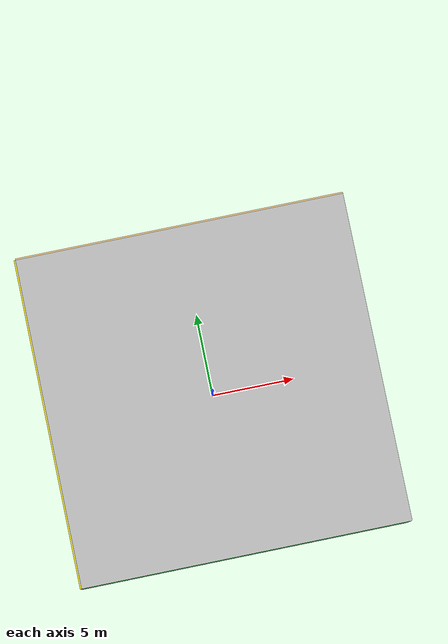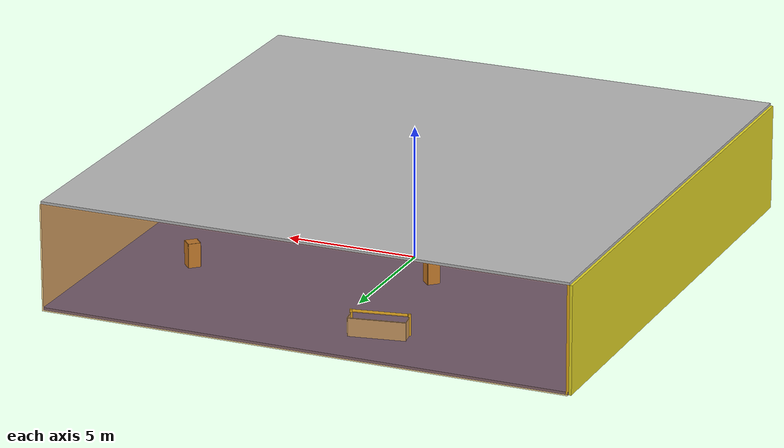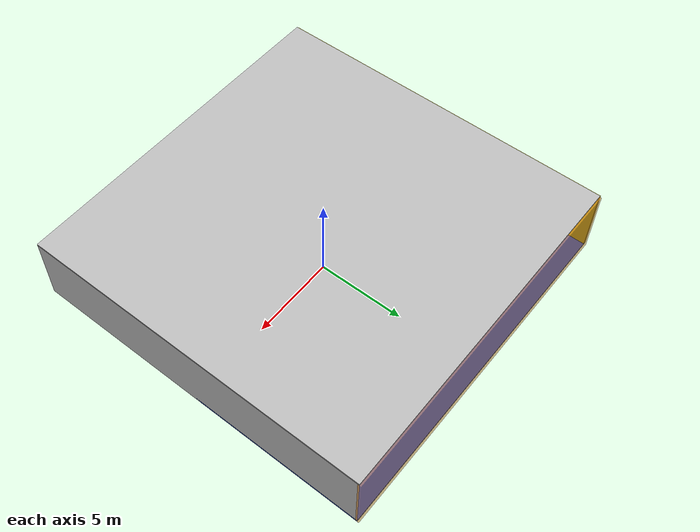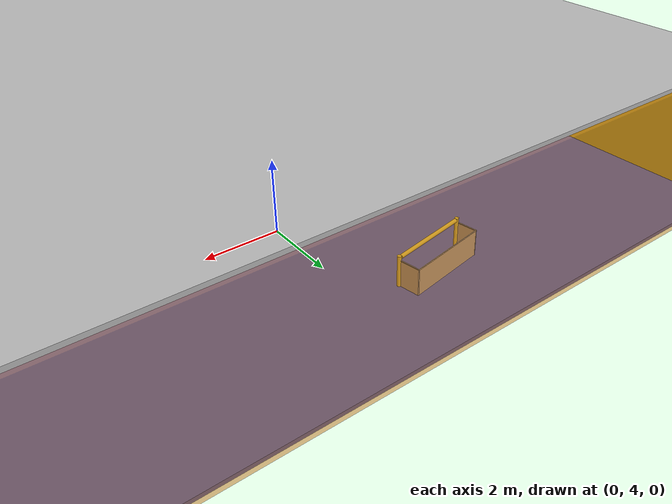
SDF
<sdf version="1.4">
 <world name="default">
  <physics type="ode">
   <max_step_size>0.001</max_step_size>
   <real_time_factor>1</real_time_factor>
   <real_time_update_rate>1000</real_time_update_rate>
   <gravity>0 0 -9.8</gravity>
  </physics>
  <scene><ambient>0.4 0.4 0.4 1</ambient><background>0.7 0.7 0.7 1</background><shadows>1</shadows></scene>
  <model name="Surrounding">
   <static>1</static>
   <link name="Ceiling">
    <collision name="Ceiling_Collision"><geometry><box><size>20 20 0.1</size></box></geometry></collision>
    <visual name="Ceiling_Visual">
     <geometry><box><size>20 20 0.1</size></box></geometry>
     <material>
      <script><uri>file://media/materials/scripts/gazebo.material</uri><name>Gazebo/PioneerBody</name></script>
     </material>
    </visual>
    <pose>0 0 4.05 0 0 0</pose>
   </link>
   <link name="Wall_South">
    <collision name="Wall_South_Collision">
     <geometry><box><size>20 0 4</size></box></geometry>
     <pose>0 0 2 0 -0 0</pose>
    </collision>
    <visual name="Wall_South_Visual">
     <pose>0 0 2 0 -0 0</pose>
     <geometry><box><size>20 0 4</size></box></geometry>
     <material>
      <script><uri>file://media/materials/scripts/gazebo.material</uri><name>Gazebo/GreenGlow</name></script>
     </material>
    </visual>
    <velocity_decay><linear>0</linear><angular>0</angular></velocity_decay>
    <pose>0 -10 0 0 -0 0</pose>
   </link>
   <link name="Wall_East">
    <collision name="Wall_21_Collision">
     <geometry><box><size>20 0 4</size></box></geometry>
     <pose>0 0 2 0 -0 0</pose>
    </collision>
    <visual name="Wall_21_Visual">
     <pose>0 0 2 0 -0 0</pose>
     <geometry><box><size>20 0 4</size></box></geometry>
     <material>
      <script><uri>file://media/materials/scripts/gazebo.material</uri><name>Gazebo/CloudySky</name></script>
     </material>
    </visual>
    <velocity_decay><linear>0</linear><angular>0</angular></velocity_decay>
    <pose>10 0 0 0 -0 1.5708</pose>
   </link>
   <link name="Wall_North">
    <collision name="Wall_22_Collision">
     <geometry><box><size>20 0.2 4</size></box></geometry>
     <pose>0 0 2 0 -0 0</pose>
    </collision>
    <visual name="Wall_22_Visual">
     <pose>0 0 2 0 -0 0</pose>
     <geometry><box><size>20 0.2 4</size></box></geometry>
     <material>
      <script>
       <uri>file://media/materials/scripts/gazebo.material</uri>
       <name>Gazebo/OrangeTransparent</name>
      </script>
     </material>
    </visual>
    <velocity_decay><linear>0</linear><angular>0</angular></velocity_decay>
    <pose>0 10 0 0 -0 0</pose>
   </link>
   <link name="Wall_West">
    <collision name="Wall_23_Collision">
     <geometry><box><size>20 0.2 4</size></box></geometry>
     <pose>0 0 2 0 -0 0</pose>
    </collision>
    <visual name="Wall_23_Visual">
     <pose>0 0 2 0 -0 0</pose>
     <geometry><box><size>20 0.2 4</size></box></geometry>
     <material>
      <script><uri>file://media/materials/scripts/gazebo.material</uri><name>Gazebo/Yellow</name></script>
     </material>
    </visual>
    <velocity_decay><linear>0</linear><angular>0</angular></velocity_decay>
    <pose>-10 0 0 0 0 -1.5708</pose>
   </link>
   <link name="Ground_link">
    <collision name="collision">
     <pose>0 0 .05 0 -0 0</pose>
     <geometry><box><size>20 20 0.1</size></box></geometry>
    </collision>
    <visual name="visual">
     <pose>0 0 .05 0 -0 0</pose>
     <geometry><box><size>20 20 0.1</size></box></geometry>
     <material>
      <script><uri>file://media/materials/scripts/gazebo.material</uri><name>Gazebo/BlueLaser</name></script>
     </material>
    </visual>
   </link>
   <static>1</static>
  </model>
  <spherical_coordinates>
   <surface_model>EARTH_WGS84</surface_model>
   <latitude_deg>0</latitude_deg>
   <longitude_deg>0</longitude_deg>
   <elevation>0</elevation>
   <heading_deg>0</heading_deg>
  </spherical_coordinates>
  <light name="lightball_0" type="diffuse">
   <diffuse>0.8 0.8 0.8 1</diffuse>
   <specular>0.2 0.2 0.2 1</specular>
   <attenuation>
    <range>100</range>
    <constant>0.7</constant>
    <linear>0.01</linear>
    <quadratic>0.001</quadratic>
   </attenuation>
   <direction>-0.5 0.1 -0.9</direction>
   <pose>-4.95296570286 9.57435676688 2.49169821818 0 0 0</pose>
  </light>
  <light name="lightball_1" type="diffuse">
   <diffuse>0.8 0.8 0.8 1</diffuse>
   <specular>0.2 0.2 0.2 1</specular>
   <attenuation>
    <range>100</range>
    <constant>0.7</constant>
    <linear>0.01</linear>
    <quadratic>0.001</quadratic>
   </attenuation>
   <direction>-0.5 0.1 -0.9</direction>
   <pose>4.79386092698 5.48393634509 0.565167530258 0 0 0</pose>
  </light>
  <light name="lightball_2" type="diffuse">
   <diffuse>0.8 0.8 0.8 1</diffuse>
   <specular>0.2 0.2 0.2 1</specular>
   <attenuation>
    <range>100</range>
    <constant>0.7</constant>
    <linear>0.01</linear>
    <quadratic>0.001</quadratic>
   </attenuation>
   <direction>-0.5 0.1 -0.9</direction>
   <pose>-7.77440922142 -6.7450352231 3.69958724555 0 0 0</pose>
  </light>
  <light name="lightball_3" type="diffuse">
   <diffuse>0.8 0.8 0.8 1</diffuse>
   <specular>0.2 0.2 0.2 1</specular>
   <attenuation>
    <range>100</range>
    <constant>0.7</constant>
    <linear>0.01</linear>
    <quadratic>0.001</quadratic>
   </attenuation>
   <direction>-0.5 0.1 -0.9</direction>
   <pose>-4.49429505642 4.44259886009 0.800879289649 0 0 0</pose>
  </light>
  <include>
   <uri>model://textured_shapes</uri>
   <pose>-7.35731504574 -7.13306510632 0 0 0 0.736095239384</pose>
  </include>
  <include><uri>model://cabinet</uri><pose>-1.63623708334 2.27721232288 0 0 0 2.31122457082</pose></include>
  <include>
   <uri>model://robocup_3Dsim_goal</uri>
   <pose>-1.92437109874 7.52315619995 0 0 0 1.74410688572</pose>
  </include>
  <include><uri>model://cabinet</uri><pose>6.94062736431 4.14427716205 0 0 0 2.31243428032</pose></include>
 </world>
</sdf>

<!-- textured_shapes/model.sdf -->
<sdf version="1.6">
  <model name="textured_shapes">
    <pose>0 0 0.5 0 0 0</pose>
    <link name="box">
      <pose>0 -1.5 0 0 0 0</pose>
      <collision name="collision">
        <geometry>
          <box>
            <size>1 1 1</size>
          </box>
        </geometry>
      </collision>
      <visual name="visual">
        <geometry>
          <box>
            <size>1 1 1</size>
          </box>
        </geometry>
        <material>
          <script>
            <uri>model://../model_source/models/textured_shapes/materials/scripts</uri>
            <uri>model://../model_source/models/textured_shapes/materials/textures</uri>
            <name>TexturedShape/Squares</name>
          </script>
        </material>
      </visual>
    </link>
    <link name="sphere">
      <collision name="collision">
        <geometry>
          <sphere>
            <radius>0.5</radius>
          </sphere>
        </geometry>
      </collision>
      <visual name="visual">
        <geometry>
          <sphere>
            <radius>0.5</radius>
          </sphere>
        </geometry>
        <material>
          <script>
            <uri>model://../model_source/models/textured_shapes/materials/scripts</uri>
            <uri>model://../model_source/models/textured_shapes/materials/textures</uri>
            <name>TexturedShape/Squares</name>
          </script>
        </material>
      </visual>
    </link>
    <link name="cylinder">
      <pose>0 1.5 0 0 0 0</pose>
      <collision name="collision">
        <geometry>
          <cylinder>
            <radius>0.5</radius>
            <length>1</length>
          </cylinder>
        </geometry>
      </collision>
      <visual name="visual">
        <geometry>
          <cylinder>
            <radius>0.5</radius>
            <length>1</length>
          </cylinder>
        </geometry>
        <material>
          <script>
            <uri>model://../model_source/models/textured_shapes/materials/scripts</uri>
            <uri>model://../model_source/models/textured_shapes/materials/textures</uri>
            <name>TexturedShape/Squares</name>
          </script>
        </material>
      </visual>
    </link>
  </model>
</sdf>

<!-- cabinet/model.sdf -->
<sdf version="1.5">
  <model name="cabinet">
    <static>true</static>
    <link name="cabinet_bottom_plate">
      <inertial>
        <pose>0 0 -1 0 0 0</pose>
        <inertia>
          <ixx>2.050000</ixx>
          <ixy>0</ixy>
          <ixz>0</ixz>
          <iyy>2.050000</iyy>
          <iyz>0</iyz>
          <izz>2.050000</izz>
        </inertia>
        <mass>25.000000</mass>
      </inertial>
      <collision name="cabinet_bottom_plate_geom">
        <pose>0 0 0.010000 0 0 0</pose>
        <geometry>
          <box>
            <size>0.450000 0.450000 0.020000</size>
          </box>
        </geometry>
      </collision>
      <visual name="cabinet_bottom_plate_geom_visual">
        <pose>0 0 0.010000 0 0 0</pose>
        <geometry>
          <box>
            <size>0.450000 0.450000 0.020000</size>
          </box>
        </geometry>
        <material>
          <script>
            <uri>model://media/materials/scripts/gazebo.material</uri>
            <name>Gazebo/Wood</name>
          </script>
        </material>
      </visual>
      <collision name="cabinet_bottom_plate_geom_cabinet_back_plate">
        <pose>0.235000 0 0.510000 0 0 0</pose>
        <geometry>
          <box>
            <size>0.020000 0.450000 1.020000</size>
          </box>
        </geometry>
      </collision>
      <visual name="cabinet_bottom_plate_geom_cabinet_back_plate_visual">
        <pose>0.235000 0 0.510000 0 0 0</pose>
        <geometry>
          <box>
            <size>0.020000 0.450000 1.020000</size>
          </box>
        </geometry>
        <material>
          <script>
            <uri>model://media/materials/scripts/gazebo.material</uri>
            <name>Gazebo/Wood</name>
          </script>
        </material>
      </visual>
      <collision name="cabinet_bottom_plate_geom_cabinet_left_plate">
        <pose>0 0.235000 0.510000 0 0 0</pose>
        <geometry>
          <box>
            <size>0.450000 0.020000 1.020000</size>
          </box>
        </geometry>
      </collision>
      <visual name="cabinet_bottom_plate_geom_cabinet_left_plate_visual">
        <pose>0 0.235000 0.510000 0 0 0</pose>
        <geometry>
          <box>
            <size>0.450000 0.020000 1.020000</size>
          </box>
        </geometry>
        <material>
          <script>
            <uri>model://media/materials/scripts/gazebo.material</uri>
            <name>Gazebo/Wood</name>
          </script>
        </material>
      </visual>
      <collision name="cabinet_bottom_plate_geom_cabinet_middle_plate">
        <pose>0 0 0.510000 0 0 0</pose>
        <geometry>
          <box>
            <size>0.450000 0.450000 0.020000</size>
          </box>
        </geometry>
      </collision>
      <visual name="cabinet_bottom_plate_geom_cabinet_middle_plate_visual">
        <pose>0 0 0.510000 0 0 0</pose>
        <geometry>
          <box>
            <size>0.450000 0.450000 0.020000</size>
          </box>
        </geometry>
        <material>
          <script>
            <uri>model://media/materials/scripts/gazebo.material</uri>
            <name>Gazebo/Wood</name>
          </script>
        </material>
      </visual>
      <collision name="cabinet_bottom_plate_geom_cabinet_right_plate">
        <pose>0 -0.235000 0.510000 0 0 0</pose>
        <geometry>
          <box>
            <size>0.450000 0.020000 1.020000</size>
          </box>
        </geometry>
      </collision>
      <visual name="cabinet_bottom_plate_geom_cabinet_right_plate_visual">
        <pose>0 -0.235000 0.510000 0 0 0</pose>
        <geometry>
          <box>
            <size>0.450000 0.020000 1.020000</size>
          </box>
        </geometry>
        <material>
          <script>
            <uri>model://media/materials/scripts/gazebo.material</uri>
            <name>Gazebo/Wood</name>
          </script>
        </material>
      </visual>
      <collision name="cabinet_bottom_plate_geom_cabinet_top_plate">
        <pose>0 0 1.010000 0 0 0</pose>
        <geometry>
          <box>
            <size>0.450000 0.450000 0.020000</size>
          </box>
        </geometry>
      </collision>
      <visual name="cabinet_bottom_plate_geom_cabinet_top_plate_visual">
        <pose>0 0 1.010000 0 0 0</pose>
        <geometry>
          <box>
            <size>0.450000 0.450000 0.020000</size>
          </box>
        </geometry>
        <material>
          <script>
            <uri>model://media/materials/scripts/gazebo.material</uri>
            <name>Gazebo/Wood</name>
          </script>
        </material>
      </visual>
    </link>
  </model>
</sdf>

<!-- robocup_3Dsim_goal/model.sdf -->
<sdf version="1.5">
  <model name="robocup_3d_goal">
    <static>true</static>
    <link name="left_post">
      <pose>0 1.05 0.45 0 0 0</pose>
      <collision name="collision">
        <geometry>
          <cylinder>
            <radius>0.05</radius>
            <length>0.9</length>
          </cylinder>
        </geometry>
      </collision>
      <visual name="visual">
        <geometry>
          <cylinder>
            <radius>0.05</radius>
            <length>0.9</length>
          </cylinder>
        </geometry>
        <material>
          <script>
            <uri>file://media/materials/scripts/gazebo.material</uri>
            <name>Gazebo/ZincYellow</name>
          </script>
        </material>
      </visual>
    </link>
    <link name="left_support_horiz_lower">
      <pose>0.30 1.05 0.01 0 0 0</pose>
      <collision name="collision">
        <geometry>
          <box>
            <size>0.50 0.02 0.02</size>
          </box>
        </geometry>
      </collision>
      <visual name="visual">
        <geometry>
          <box>
            <size>0.50 0.02 0.02</size>
          </box>
        </geometry>
        <material>
          <script>
            <uri>file://media/materials/scripts/gazebo.material</uri>
            <name>Gazebo/White</name>
          </script>
        </material>
      </visual>
    </link>
    <link name="left_support_horiz_upper">
      <pose>0.30 1.05 0.79 0 0 0</pose>
      <collision name="collision">
        <geometry>
          <box>
            <size>0.50 0.02 0.02</size>
          </box>
        </geometry>
      </collision>
      <visual name="visual">
        <geometry>
          <box>
            <size>0.50 0.02 0.02</size>
          </box>
        </geometry>
        <material>
          <script>
            <uri>file://media/materials/scripts/gazebo.material</uri>
            <name>Gazebo/White</name>
          </script>
        </material>
      </visual>
    </link>
    <link name="left_support_vertical">
      <pose>0.56 1.05 0.4 0 1.5708 0</pose>
      <collision name="collision">
        <geometry>
          <box>
            <size>0.80 0.02 0.02</size>
          </box>
        </geometry>
      </collision>
      <visual name="visual">
        <geometry>
          <box>
            <size>0.80 0.02 0.02</size>
          </box>
        </geometry>
        <material>
          <script>
            <uri>file://media/materials/scripts/gazebo.material</uri>
            <name>Gazebo/White</name>
          </script>
        </material>
      </visual>
    </link>
    <link name="right_support_horiz_lower">
      <pose>0.30 -1.05 0.01 0 0 0</pose>
      <collision name="collision">
        <geometry>
          <box>
            <size>0.50 0.02 0.02</size>
          </box>
        </geometry>
      </collision>
      <visual name="visual">
        <geometry>
          <box>
            <size>0.50 0.02 0.02</size>
          </box>
        </geometry>
        <material>
          <script>
            <uri>file://media/materials/scripts/gazebo.material</uri>
            <name>Gazebo/White</name>
          </script>
        </material>
      </visual>
    </link>
    <link name="right_support_horiz_upper">
      <pose>0.30 -1.05 0.79 0 0 0</pose>
      <collision name="collision">
        <geometry>
          <box>
            <size>0.50 0.02 0.02</size>
          </box>
        </geometry>
      </collision>
      <visual name="visual">
        <geometry>
          <box>
            <size>0.50 0.02 0.02</size>
          </box>
        </geometry>
        <material>
          <script>
            <uri>file://media/materials/scripts/gazebo.material</uri>
            <name>Gazebo/White</name>
          </script>
        </material>
      </visual>
    </link>
    <link name="right_support_vertical">
      <pose>0.56 -1.05 0.4 0 1.5708 0</pose>
      <collision name="collision">
        <geometry>
          <box>
            <size>0.80 0.02 0.02</size>
          </box>
        </geometry>
      </collision>
      <visual name="visual">
        <geometry>
          <box>
            <size>0.80 0.02 0.02</size>
          </box>
        </geometry>
        <material>
          <script>
            <uri>file://media/materials/scripts/gazebo.material</uri>
            <name>Gazebo/White</name>
          </script>
        </material>
      </visual>
    </link>
    <link name="center_support_horiz_lower">
      <pose>0.56 0 0.01 0 1.5708 0</pose>
      <collision name="collision">
        <geometry>
          <box>
            <size>0.02 2.08 0.02</size>
          </box>
        </geometry>
      </collision>
      <visual name="visual">
        <geometry>
          <box>
            <size>0.02 2.08 0.02</size>
          </box>
        </geometry>
        <material>
          <script>
            <uri>file://media/materials/scripts/gazebo.material</uri>
            <name>Gazebo/White</name>
          </script>
        </material>
      </visual>
    </link>
    <link name="center_support_horiz_upper">
      <pose>0.56 0 0.79 0 1.5708 0</pose>
      <collision name="collision">
        <geometry>
          <box>
            <size>0.02 2.08 0.02</size>
          </box>
        </geometry>
      </collision>
      <visual name="visual">
        <geometry>
          <box>
            <size>0.02 2.08 0.02</size>
          </box>
        </geometry>
        <material>
          <script>
            <uri>file://media/materials/scripts/gazebo.material</uri>
            <name>Gazebo/White</name>
          </script>
        </material>
      </visual>
    </link>
    <link name="right_post">
      <pose>0 -1.05 0.45 0 0 0</pose>
      <collision name="collision">
        <geometry>
          <cylinder>
            <radius>0.05</radius>
            <length>0.9</length>
          </cylinder>
        </geometry>
      </collision>
      <visual name="visual">
        <geometry>
          <cylinder>
            <radius>0.05</radius>
            <length>0.9</length>
          </cylinder>
        </geometry>
        <material>
          <script>
            <uri>file://media/materials/scripts/gazebo.material</uri>
            <name>Gazebo/ZincYellow</name>
          </script>
        </material>
      </visual>
    </link>
    <link name="crossbar">
      <pose>0 0 0.85 1.57 1.57 0</pose>
      <collision name="collision">
        <geometry>
          <cylinder>
            <radius>0.05</radius>
            <length>2.0</length>
          </cylinder>
        </geometry>
      </collision>
      <visual name="visual">
        <geometry>
          <cylinder>
            <radius>0.05</radius>
            <length>2.0</length>
          </cylinder>
        </geometry>
        <material>
          <script>
            <uri>file://media/materials/scripts/gazebo.material</uri>
            <name>Gazebo/ZincYellow</name>
          </script>
        </material>
      </visual>
    </link>
    <link name="center_net">
      <pose>0.56 0 0.40 0 0 0</pose>
      <collision name="collision">
        <geometry>
          <box>
            <size>0.01 2.1 0.80</size>
          </box>
        </geometry>
      </collision>
      <visual name="visual">
        <geometry>
          <box>
            <size>0.01 2.1 0.80</size>
          </box>
        </geometry>
        <material>
          <script>
            <uri>model://../model_source/models/robocup09_spl_field/materials/scripts/</uri>
            <uri>model://../model_source/models/robocup09_spl_field/materials/textures/</uri>
            <name>RoboCup/Net</name>
          </script>
        </material>
      </visual>
    </link>
    <link name="left_net">
      <pose>0.30 1.05 0.40 0 0 0</pose>
      <collision name="collision">
        <geometry>
          <box>
            <size>0.50 0.01 0.76</size>
          </box>
        </geometry>
      </collision>
      <visual name="visual">
        <geometry>
          <box>
            <size>0.50 0.01 0.76</size>
          </box>
        </geometry>
        <material>
          <script>
            <uri>model://../model_source/models/robocup09_spl_field/materials/scripts/</uri>
            <uri>model://../model_source/models/robocup09_spl_field/materials/textures/</uri>
            <name>RoboCup/Net</name>
          </script>
        </material>
      </visual>
    </link>
    <link name="right_net">
      <pose>0.30 -1.05 0.40 0 0 0</pose>
      <collision name="collision">
        <geometry>
          <box>
            <size>0.50 0.01 0.76</size>
          </box>
        </geometry>
      </collision>
      <visual name="visual">
        <geometry>
          <box>
            <size>0.50 0.01 0.76</size>
          </box>
        </geometry>
        <material>
          <script>
            <uri>model://../model_source/models/robocup09_spl_field/materials/scripts/</uri>
            <uri>model://../model_source/models/robocup09_spl_field/materials/textures/</uri>
            <name>RoboCup/Net</name>
          </script>
        </material>
      </visual>
    </link>
  </model>
</sdf>
